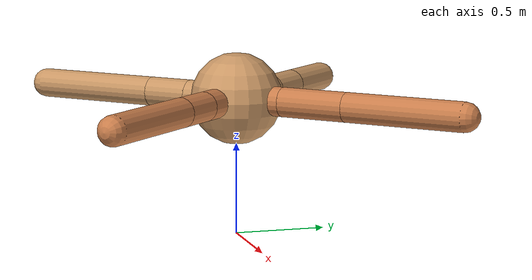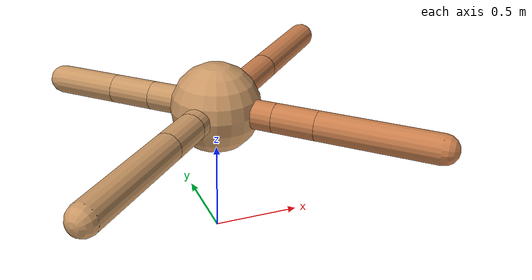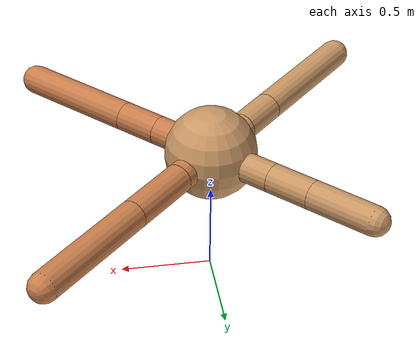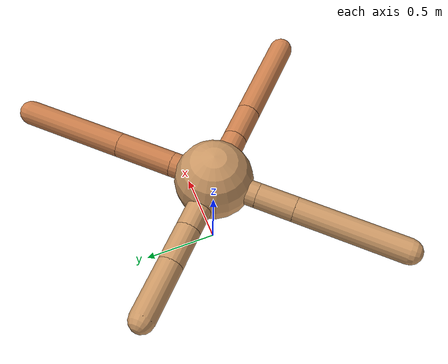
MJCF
<mujoco model="ant">
  <compiler angle="degree" coordinate="local" inertiafromgeom="true" />
  <option integrator="RK4" timestep="0.01" />
  <custom>
    <numeric data="0.0 0.0 0.55 1.0 0.0 0.0 0.0 0.0 1.0 0.0 -1.0 0.0 -1.0 0.0 1.0" name="init_qpos" />
  </custom>
  <default>
    <joint armature="1" damping="1" limited="true" />
    <geom conaffinity="0" condim="3" density="5.0" friction="1.5 0.1 0.1" margin="0.01" rgba="0.8 0.6 0.4 1" />
  </default>
  <worldbody>
    <body name="torso" pos="0 0 0.75">
      <geom name="torso_geom" pos="0 0 0" size="0.25" type="sphere" />

      <body name="front_left_leg" pos="0 0 0">
        <geom fromto="0.0 0.0 0.0 0.20201338849910266 0.20201338849910266 0.0" name="aux_1_geom" size="0.08" type="capsule" rgba=".8 .5 .3 1" />
        <body name="aux_1" pos="0.20201338849910266 0.20201338849910266 0.0">
          <joint axis="0 0 1" name="hip_1" pos="0.0 0.0 0.0" range="-40 40" type="hinge" />
          <geom fromto="0.0 0.0 0.0 0.26601028442770797 0.26601028442770797 0.0" name="left_leg_geom" size="0.08" type="capsule" rgba=".8 .5 .3 1" />
          <body pos="0.26601028442770797 0.26601028442770797 0.0" name="front_left_foot">
            <joint axis="-1 1 0" name="ankle_1" pos="0.0 0.0 0.0" range="30 100" type="hinge" />
            <geom fromto="0.0 0.0 0.0 0.4769889873969746 0.4769889873969746 0.0" name="left_ankle_geom" size="0.08" type="capsule" rgba=".8 .5 .3 1" />
          </body>
        </body>
      </body>
      <body name="front_right_leg" pos="0 0 0">
        <geom fromto="0.0 0.0 0.0 -0.27580381119655994 0.27580381119655994 0.0" name="aux_2_geom" size="0.08" type="capsule" />
        <body name="aux_2" pos="-0.27580381119655994 0.27580381119655994 0.0">
          <joint axis="0 0 1" name="hip_2" pos="0.0 0.0 0.0" range="-40 40" type="hinge" />
          <geom fromto="0.0 0.0 0.0 -0.17252860413219695 0.17252860413219695 0.0" name="right_leg_geom" size="0.08" type="capsule" />
          <body pos="-0.17252860413219695 0.17252860413219695 0.0" name="front_right_foot">
            <joint axis="1 1 0" name="ankle_2" pos="0.0 0.0 0.0" range="-100 -30" type="hinge" />
            <geom fromto="0.0 0.0 0.0 -0.2564677974892908 0.2564677974892908 0.0" name="right_ankle_geom" size="0.08" type="capsule" />
          </body>
        </body>
      </body>
      <body name="left_back_leg" pos="0 0 0">
        <geom fromto="0.0 0.0 0.0 -0.20879556937380422 -0.20879556937380422 0.0" name="aux_3_geom" size="0.08" type="capsule" />
        <body name="aux_3" pos="-0.20879556937380422 -0.20879556937380422 0.0">
          <joint axis="0 0 1" name="hip_3" pos="0.0 0.0 0.0" range="-40 40" type="hinge" />
          <geom fromto="0.0 0.0 0.0 -0.17212923306269723 -0.17212923306269723 0.0" name="back_leg_geom" size="0.08" type="capsule" />
          <body pos="-0.17212923306269723 -0.17212923306269723 0.0" name="left_back_foot">
            <joint axis="-1 1 0" name="ankle_3" pos="0.0 0.0 0.0" range="-100 -30" type="hinge" />
            <geom fromto="0.0 0.0 0.0 -0.49889324647208566 -0.49889324647208566 0.0" name="third_ankle_geom" size="0.08" type="capsule" />
          </body>
        </body>
      </body>
      <body name="right_back_leg" pos="0 0 0">
        <geom fromto="0.0 0.0 0.0 0.24452937439482403 -0.24452937439482403 0.0" name="aux_4_geom" size="0.08" type="capsule" rgba=".8 .5 .3 1" />
        <body name="aux_4" pos="0.24452937439482403 -0.24452937439482403 0.0">
          <joint axis="0 0 1" name="hip_4" pos="0.0 0.0 0.0" range="-40 40" type="hinge" />
          <geom fromto="0.0 0.0 0.0 0.16542035174443592 -0.16542035174443592 0.0" name="rightback_leg_geom" size="0.08" type="capsule" rgba=".8 .5 .3 1" />
          <body pos="0.16542035174443592 -0.16542035174443592 0.0" name="right_back_foot">
            <joint axis="1 1 0" name="ankle_4" pos="0.0 0.0 0.0" range="30 100" type="hinge" />
            <geom fromto="0.0 0.0 0.0 0.45618391319691 -0.45618391319691 0.0" name="fourth_ankle_geom" size="0.08" type="capsule" rgba=".8 .5 .3 1" />
          </body>
        </body>
      </body>
    </body>
  </worldbody>
  <actuator>
    <motor ctrllimited="true" ctrlrange="-1.0 1.0" joint="hip_4" gear="150" />
    <motor ctrllimited="true" ctrlrange="-1.0 1.0" joint="ankle_4" gear="150" />
    <motor ctrllimited="true" ctrlrange="-1.0 1.0" joint="hip_1" gear="150" />
    <motor ctrllimited="true" ctrlrange="-1.0 1.0" joint="ankle_1" gear="150" />
    <motor ctrllimited="true" ctrlrange="-1.0 1.0" joint="hip_2" gear="150" />
    <motor ctrllimited="true" ctrlrange="-1.0 1.0" joint="ankle_2" gear="150" />
    <motor ctrllimited="true" ctrlrange="-1.0 1.0" joint="hip_3" gear="150" />
    <motor ctrllimited="true" ctrlrange="-1.0 1.0" joint="ankle_3" gear="150" />
  </actuator>
</mujoco>
